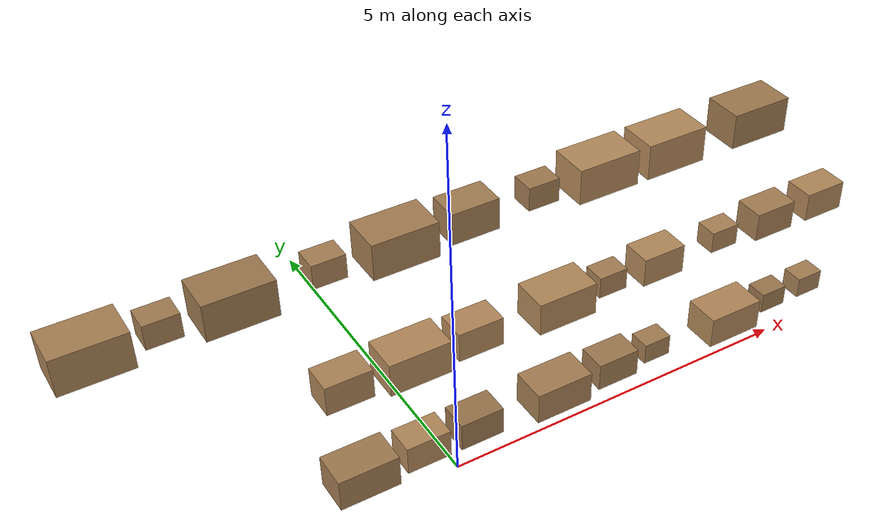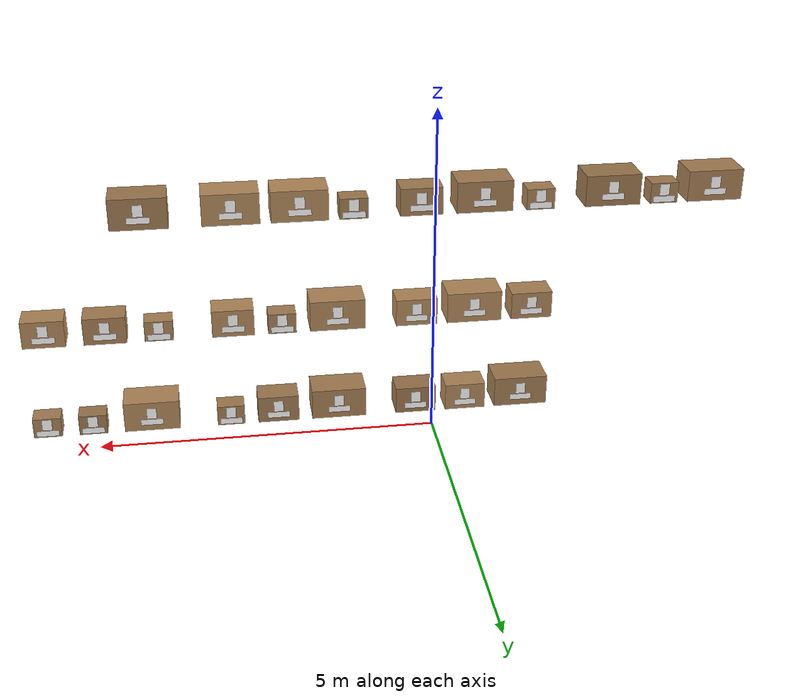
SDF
<sdf version="1.9">
 <world name="warehouse">
  <model name="inventory">
   <static>true</static>
   <link name="box_C_03_3_0">
    <visual name="body">
     <pose>-4 0.03 3.775 0 0 0</pose>
     <geometry><box><size>0.8 0.5 0.45</size></box></geometry>
     <material>
      <ambient>0.327893 0.250742 0.163947 1</ambient>
      <diffuse>0.655787 0.501484 0.327893 1</diffuse>
      <specular>0.05 0.05 0.05 1</specular>
      <pbr><metal><metalness>0.0</metalness><roughness>0.9</roughness></metal></pbr>
     </material>
    </visual>
    <collision name="body_c">
     <pose>-4 0.03 3.775 0 0 0</pose>
     <geometry><box><size>0.8 0.5 0.45</size></box></geometry>
    </collision>
    <visual name="label">
     <pose>-4 0.284 3.825 1.5708 0 3.14159</pose>
     <geometry>
      <mesh><uri>model://warehouse_assets/meshes/label_quad.obj</uri><scale>0.14 0.17 1</scale></mesh>
     </geometry>
     <material>
      <ambient>1 1 1 1</ambient>
      <diffuse>1 1 1 1</diffuse>
      <specular>0 0 0 1</specular>
      <pbr>
       <metal>
        <albedo_map>model://warehouse_assets/materials/textures/box_C0330.png</albedo_map>
        <metalness>0.0</metalness>
        <roughness>1.0</roughness>
       </metal>
      </pbr>
     </material>
    </visual>
    <visual name="placard">
     <pose>-4 0.284 3.685 1.5708 0 3.14159</pose>
     <geometry>
      <mesh><uri>model://warehouse_assets/meshes/label_quad.obj</uri><scale>0.32 0.09 1</scale></mesh>
     </geometry>
     <material>
      <ambient>1 1 1 1</ambient>
      <diffuse>1 1 1 1</diffuse>
      <specular>0 0 0 1</specular>
      <pbr>
       <metal>
        <albedo_map>model://warehouse_assets/materials/textures/placard_C0330.png</albedo_map>
        <metalness>0.0</metalness>
        <roughness>1.0</roughness>
       </metal>
      </pbr>
     </material>
    </visual>
   </link>
   <link name="box_C_03_3_1">
    <visual name="body">
     <pose>-3.25 0.13 3.7 0 0 0</pose>
     <geometry><box><size>0.4 0.3 0.3</size></box></geometry>
     <material>
      <ambient>0.320514 0.245099 0.160257 1</ambient>
      <diffuse>0.641028 0.490198 0.320514 1</diffuse>
      <specular>0.05 0.05 0.05 1</specular>
      <pbr><metal><metalness>0.0</metalness><roughness>0.9</roughness></metal></pbr>
     </material>
    </visual>
    <collision name="body_c">
     <pose>-3.25 0.13 3.7 0 0 0</pose>
     <geometry><box><size>0.4 0.3 0.3</size></box></geometry>
    </collision>
    <visual name="label">
     <pose>-3.25 0.284 3.75 1.5708 0 3.14159</pose>
     <geometry>
      <mesh><uri>model://warehouse_assets/meshes/label_quad.obj</uri><scale>0.14 0.17 1</scale></mesh>
     </geometry>
     <material>
      <ambient>1 1 1 1</ambient>
      <diffuse>1 1 1 1</diffuse>
      <specular>0 0 0 1</specular>
      <pbr>
       <metal>
        <albedo_map>model://warehouse_assets/materials/textures/box_C0331.png</albedo_map>
        <metalness>0.0</metalness>
        <roughness>1.0</roughness>
       </metal>
      </pbr>
     </material>
    </visual>
    <visual name="placard">
     <pose>-3.25 0.284 3.61 1.5708 0 3.14159</pose>
     <geometry>
      <mesh><uri>model://warehouse_assets/meshes/label_quad.obj</uri><scale>0.32 0.09 1</scale></mesh>
     </geometry>
     <material>
      <ambient>1 1 1 1</ambient>
      <diffuse>1 1 1 1</diffuse>
      <specular>0 0 0 1</specular>
      <pbr>
       <metal>
        <albedo_map>model://warehouse_assets/materials/textures/placard_C0331.png</albedo_map>
        <metalness>0.0</metalness>
        <roughness>1.0</roughness>
       </metal>
      </pbr>
     </material>
    </visual>
   </link>
   <link name="box_C_03_3_2">
    <visual name="body">
     <pose>-2.5 0.03 3.775 0 0 0</pose>
     <geometry><box><size>0.8 0.5 0.45</size></box></geometry>
     <material>
      <ambient>0.306955 0.234731 0.153478 1</ambient>
      <diffuse>0.613911 0.469461 0.306955 1</diffuse>
      <specular>0.05 0.05 0.05 1</specular>
      <pbr><metal><metalness>0.0</metalness><roughness>0.9</roughness></metal></pbr>
     </material>
    </visual>
    <collision name="body_c">
     <pose>-2.5 0.03 3.775 0 0 0</pose>
     <geometry><box><size>0.8 0.5 0.45</size></box></geometry>
    </collision>
    <visual name="label">
     <pose>-2.5 0.284 3.825 1.5708 0 3.14159</pose>
     <geometry>
      <mesh><uri>model://warehouse_assets/meshes/label_quad.obj</uri><scale>0.14 0.17 1</scale></mesh>
     </geometry>
     <material>
      <ambient>1 1 1 1</ambient>
      <diffuse>1 1 1 1</diffuse>
      <specular>0 0 0 1</specular>
      <pbr>
       <metal>
        <albedo_map>model://warehouse_assets/materials/textures/box_C0332.png</albedo_map>
        <metalness>0.0</metalness>
        <roughness>1.0</roughness>
       </metal>
      </pbr>
     </material>
    </visual>
    <visual name="placard">
     <pose>-2.5 0.284 3.685 1.5708 0 3.14159</pose>
     <geometry>
      <mesh><uri>model://warehouse_assets/meshes/label_quad.obj</uri><scale>0.32 0.09 1</scale></mesh>
     </geometry>
     <material>
      <ambient>1 1 1 1</ambient>
      <diffuse>1 1 1 1</diffuse>
      <specular>0 0 0 1</specular>
      <pbr>
       <metal>
        <albedo_map>model://warehouse_assets/materials/textures/placard_C0332.png</albedo_map>
        <metalness>0.0</metalness>
        <roughness>1.0</roughness>
       </metal>
      </pbr>
     </material>
    </visual>
   </link>
   <link name="box_C_04_1_0">
    <visual name="body">
     <pose>-1.3 0.03 0.625 0 0 0</pose>
     <geometry><box><size>0.8 0.5 0.45</size></box></geometry>
     <material>
      <ambient>0.317664 0.242919 0.158832 1</ambient>
      <diffuse>0.635327 0.485839 0.317664 1</diffuse>
      <specular>0.05 0.05 0.05 1</specular>
      <pbr><metal><metalness>0.0</metalness><roughness>0.9</roughness></metal></pbr>
     </material>
    </visual>
    <collision name="body_c">
     <pose>-1.3 0.03 0.625 0 0 0</pose>
     <geometry><box><size>0.8 0.5 0.45</size></box></geometry>
    </collision>
    <visual name="label">
     <pose>-1.3 0.284 0.675 1.5708 0 3.14159</pose>
     <geometry>
      <mesh><uri>model://warehouse_assets/meshes/label_quad.obj</uri><scale>0.14 0.17 1</scale></mesh>
     </geometry>
     <material>
      <ambient>1 1 1 1</ambient>
      <diffuse>1 1 1 1</diffuse>
      <specular>0 0 0 1</specular>
      <pbr>
       <metal>
        <albedo_map>model://warehouse_assets/materials/textures/box_C0410.png</albedo_map>
        <metalness>0.0</metalness>
        <roughness>1.0</roughness>
       </metal>
      </pbr>
     </material>
    </visual>
    <visual name="placard">
     <pose>-1.3 0.284 0.535 1.5708 0 3.14159</pose>
     <geometry>
      <mesh><uri>model://warehouse_assets/meshes/label_quad.obj</uri><scale>0.32 0.09 1</scale></mesh>
     </geometry>
     <material>
      <ambient>1 1 1 1</ambient>
      <diffuse>1 1 1 1</diffuse>
      <specular>0 0 0 1</specular>
      <pbr>
       <metal>
        <albedo_map>model://warehouse_assets/materials/textures/placard_C0410.png</albedo_map>
        <metalness>0.0</metalness>
        <roughness>1.0</roughness>
       </metal>
      </pbr>
     </material>
    </visual>
   </link>
   <link name="box_C_04_1_1">
    <visual name="body">
     <pose>-0.45 0.08 0.6 0 0 0</pose>
     <geometry><box><size>0.6 0.4 0.4</size></box></geometry>
     <material>
      <ambient>0.347395 0.265655 0.173698 1</ambient>
      <diffuse>0.694791 0.531311 0.347395 1</diffuse>
      <specular>0.05 0.05 0.05 1</specular>
      <pbr><metal><metalness>0.0</metalness><roughness>0.9</roughness></metal></pbr>
     </material>
    </visual>
    <collision name="body_c">
     <pose>-0.45 0.08 0.6 0 0 0</pose>
     <geometry><box><size>0.6 0.4 0.4</size></box></geometry>
    </collision>
    <visual name="label">
     <pose>-0.45 0.284 0.65 1.5708 0 3.14159</pose>
     <geometry>
      <mesh><uri>model://warehouse_assets/meshes/label_quad.obj</uri><scale>0.14 0.17 1</scale></mesh>
     </geometry>
     <material>
      <ambient>1 1 1 1</ambient>
      <diffuse>1 1 1 1</diffuse>
      <specular>0 0 0 1</specular>
      <pbr>
       <metal>
        <albedo_map>model://warehouse_assets/materials/textures/box_C0411.png</albedo_map>
        <metalness>0.0</metalness>
        <roughness>1.0</roughness>
       </metal>
      </pbr>
     </material>
    </visual>
    <visual name="placard">
     <pose>-0.45 0.284 0.51 1.5708 0 3.14159</pose>
     <geometry>
      <mesh><uri>model://warehouse_assets/meshes/label_quad.obj</uri><scale>0.32 0.09 1</scale></mesh>
     </geometry>
     <material>
      <ambient>1 1 1 1</ambient>
      <diffuse>1 1 1 1</diffuse>
      <specular>0 0 0 1</specular>
      <pbr>
       <metal>
        <albedo_map>model://warehouse_assets/materials/textures/placard_C0411.png</albedo_map>
        <metalness>0.0</metalness>
        <roughness>1.0</roughness>
       </metal>
      </pbr>
     </material>
    </visual>
   </link>
   <link name="box_C_04_1_2">
    <visual name="body">
     <pose>0.3 0.08 0.6 0 0 0</pose>
     <geometry><box><size>0.6 0.4 0.4</size></box></geometry>
     <material>
      <ambient>0.302794 0.231548 0.151397 1</ambient>
      <diffuse>0.605588 0.463096 0.302794 1</diffuse>
      <specular>0.05 0.05 0.05 1</specular>
      <pbr><metal><metalness>0.0</metalness><roughness>0.9</roughness></metal></pbr>
     </material>
    </visual>
    <collision name="body_c">
     <pose>0.3 0.08 0.6 0 0 0</pose>
     <geometry><box><size>0.6 0.4 0.4</size></box></geometry>
    </collision>
    <visual name="label">
     <pose>0.3 0.284 0.65 1.5708 0 3.14159</pose>
     <geometry>
      <mesh><uri>model://warehouse_assets/meshes/label_quad.obj</uri><scale>0.14 0.17 1</scale></mesh>
     </geometry>
     <material>
      <ambient>1 1 1 1</ambient>
      <diffuse>1 1 1 1</diffuse>
      <specular>0 0 0 1</specular>
      <pbr>
       <metal>
        <albedo_map>model://warehouse_assets/materials/textures/box_C0412.png</albedo_map>
        <metalness>0.0</metalness>
        <roughness>1.0</roughness>
       </metal>
      </pbr>
     </material>
    </visual>
    <visual name="placard">
     <pose>0.3 0.284 0.51 1.5708 0 3.14159</pose>
     <geometry>
      <mesh><uri>model://warehouse_assets/meshes/label_quad.obj</uri><scale>0.32 0.09 1</scale></mesh>
     </geometry>
     <material>
      <ambient>1 1 1 1</ambient>
      <diffuse>1 1 1 1</diffuse>
      <specular>0 0 0 1</specular>
      <pbr>
       <metal>
        <albedo_map>model://warehouse_assets/materials/textures/placard_C0412.png</albedo_map>
        <metalness>0.0</metalness>
        <roughness>1.0</roughness>
       </metal>
      </pbr>
     </material>
    </visual>
   </link>
   <link name="box_C_04_2_0">
    <visual name="body">
     <pose>-1.4 0.08 2.05 0 0 0</pose>
     <geometry><box><size>0.6 0.4 0.4</size></box></geometry>
     <material>
      <ambient>0.339255 0.25943 0.169627 1</ambient>
      <diffuse>0.67851 0.51886 0.339255 1</diffuse>
      <specular>0.05 0.05 0.05 1</specular>
      <pbr><metal><metalness>0.0</metalness><roughness>0.9</roughness></metal></pbr>
     </material>
    </visual>
    <collision name="body_c">
     <pose>-1.4 0.08 2.05 0 0 0</pose>
     <geometry><box><size>0.6 0.4 0.4</size></box></geometry>
    </collision>
    <visual name="label">
     <pose>-1.4 0.284 2.1 1.5708 0 3.14159</pose>
     <geometry>
      <mesh><uri>model://warehouse_assets/meshes/label_quad.obj</uri><scale>0.14 0.17 1</scale></mesh>
     </geometry>
     <material>
      <ambient>1 1 1 1</ambient>
      <diffuse>1 1 1 1</diffuse>
      <specular>0 0 0 1</specular>
      <pbr>
       <metal>
        <albedo_map>model://warehouse_assets/materials/textures/box_C0420.png</albedo_map>
        <metalness>0.0</metalness>
        <roughness>1.0</roughness>
       </metal>
      </pbr>
     </material>
    </visual>
    <visual name="placard">
     <pose>-1.4 0.284 1.96 1.5708 0 3.14159</pose>
     <geometry>
      <mesh><uri>model://warehouse_assets/meshes/label_quad.obj</uri><scale>0.32 0.09 1</scale></mesh>
     </geometry>
     <material>
      <ambient>1 1 1 1</ambient>
      <diffuse>1 1 1 1</diffuse>
      <specular>0 0 0 1</specular>
      <pbr>
       <metal>
        <albedo_map>model://warehouse_assets/materials/textures/placard_C0420.png</albedo_map>
        <metalness>0.0</metalness>
        <roughness>1.0</roughness>
       </metal>
      </pbr>
     </material>
    </visual>
   </link>
   <link name="box_C_04_2_1">
    <visual name="body">
     <pose>-0.55 0.03 2.075 0 0 0</pose>
     <geometry><box><size>0.8 0.5 0.45</size></box></geometry>
     <material>
      <ambient>0.352536 0.269586 0.176268 1</ambient>
      <diffuse>0.705071 0.539172 0.352536 1</diffuse>
      <specular>0.05 0.05 0.05 1</specular>
      <pbr><metal><metalness>0.0</metalness><roughness>0.9</roughness></metal></pbr>
     </material>
    </visual>
    <collision name="body_c">
     <pose>-0.55 0.03 2.075 0 0 0</pose>
     <geometry><box><size>0.8 0.5 0.45</size></box></geometry>
    </collision>
    <visual name="label">
     <pose>-0.55 0.284 2.125 1.5708 0 3.14159</pose>
     <geometry>
      <mesh><uri>model://warehouse_assets/meshes/label_quad.obj</uri><scale>0.14 0.17 1</scale></mesh>
     </geometry>
     <material>
      <ambient>1 1 1 1</ambient>
      <diffuse>1 1 1 1</diffuse>
      <specular>0 0 0 1</specular>
      <pbr>
       <metal>
        <albedo_map>model://warehouse_assets/materials/textures/box_C0421.png</albedo_map>
        <metalness>0.0</metalness>
        <roughness>1.0</roughness>
       </metal>
      </pbr>
     </material>
    </visual>
    <visual name="placard">
     <pose>-0.55 0.284 1.985 1.5708 0 3.14159</pose>
     <geometry>
      <mesh><uri>model://warehouse_assets/meshes/label_quad.obj</uri><scale>0.32 0.09 1</scale></mesh>
     </geometry>
     <material>
      <ambient>1 1 1 1</ambient>
      <diffuse>1 1 1 1</diffuse>
      <specular>0 0 0 1</specular>
      <pbr>
       <metal>
        <albedo_map>model://warehouse_assets/materials/textures/placard_C0421.png</albedo_map>
        <metalness>0.0</metalness>
        <roughness>1.0</roughness>
       </metal>
      </pbr>
     </material>
    </visual>
   </link>
   <link name="box_C_04_2_2">
    <visual name="body">
     <pose>0.3 0.08 2.05 0 0 0</pose>
     <geometry><box><size>0.6 0.4 0.4</size></box></geometry>
     <material>
      <ambient>0.352989 0.269933 0.176494 1</ambient>
      <diffuse>0.705978 0.539866 0.352989 1</diffuse>
      <specular>0.05 0.05 0.05 1</specular>
      <pbr><metal><metalness>0.0</metalness><roughness>0.9</roughness></metal></pbr>
     </material>
    </visual>
    <collision name="body_c">
     <pose>0.3 0.08 2.05 0 0 0</pose>
     <geometry><box><size>0.6 0.4 0.4</size></box></geometry>
    </collision>
    <visual name="label">
     <pose>0.3 0.284 2.1 1.5708 0 3.14159</pose>
     <geometry>
      <mesh><uri>model://warehouse_assets/meshes/label_quad.obj</uri><scale>0.14 0.17 1</scale></mesh>
     </geometry>
     <material>
      <ambient>1 1 1 1</ambient>
      <diffuse>1 1 1 1</diffuse>
      <specular>0 0 0 1</specular>
      <pbr>
       <metal>
        <albedo_map>model://warehouse_assets/materials/textures/box_C0422.png</albedo_map>
        <metalness>0.0</metalness>
        <roughness>1.0</roughness>
       </metal>
      </pbr>
     </material>
    </visual>
    <visual name="placard">
     <pose>0.3 0.284 1.96 1.5708 0 3.14159</pose>
     <geometry>
      <mesh><uri>model://warehouse_assets/meshes/label_quad.obj</uri><scale>0.32 0.09 1</scale></mesh>
     </geometry>
     <material>
      <ambient>1 1 1 1</ambient>
      <diffuse>1 1 1 1</diffuse>
      <specular>0 0 0 1</specular>
      <pbr>
       <metal>
        <albedo_map>model://warehouse_assets/materials/textures/placard_C0422.png</albedo_map>
        <metalness>0.0</metalness>
        <roughness>1.0</roughness>
       </metal>
      </pbr>
     </material>
    </visual>
   </link>
   <link name="box_C_04_3_0">
    <visual name="body">
     <pose>-1.45 0.13 3.7 0 0 0</pose>
     <geometry><box><size>0.4 0.3 0.3</size></box></geometry>
     <material>
      <ambient>0.329531 0.251994 0.164765 1</ambient>
      <diffuse>0.659061 0.503988 0.329531 1</diffuse>
      <specular>0.05 0.05 0.05 1</specular>
      <pbr><metal><metalness>0.0</metalness><roughness>0.9</roughness></metal></pbr>
     </material>
    </visual>
    <collision name="body_c">
     <pose>-1.45 0.13 3.7 0 0 0</pose>
     <geometry><box><size>0.4 0.3 0.3</size></box></geometry>
    </collision>
    <visual name="label">
     <pose>-1.45 0.284 3.75 1.5708 0 3.14159</pose>
     <geometry>
      <mesh><uri>model://warehouse_assets/meshes/label_quad.obj</uri><scale>0.14 0.17 1</scale></mesh>
     </geometry>
     <material>
      <ambient>1 1 1 1</ambient>
      <diffuse>1 1 1 1</diffuse>
      <specular>0 0 0 1</specular>
      <pbr>
       <metal>
        <albedo_map>model://warehouse_assets/materials/textures/box_C0430.png</albedo_map>
        <metalness>0.0</metalness>
        <roughness>1.0</roughness>
       </metal>
      </pbr>
     </material>
    </visual>
    <visual name="placard">
     <pose>-1.45 0.284 3.61 1.5708 0 3.14159</pose>
     <geometry>
      <mesh><uri>model://warehouse_assets/meshes/label_quad.obj</uri><scale>0.32 0.09 1</scale></mesh>
     </geometry>
     <material>
      <ambient>1 1 1 1</ambient>
      <diffuse>1 1 1 1</diffuse>
      <specular>0 0 0 1</specular>
      <pbr>
       <metal>
        <albedo_map>model://warehouse_assets/materials/textures/placard_C0430.png</albedo_map>
        <metalness>0.0</metalness>
        <roughness>1.0</roughness>
       </metal>
      </pbr>
     </material>
    </visual>
   </link>
   <link name="box_C_04_3_1">
    <visual name="body">
     <pose>-0.65 0.03 3.775 0 0 0</pose>
     <geometry><box><size>0.8 0.5 0.45</size></box></geometry>
     <material>
      <ambient>0.323073 0.247056 0.161537 1</ambient>
      <diffuse>0.646146 0.494112 0.323073 1</diffuse>
      <specular>0.05 0.05 0.05 1</specular>
      <pbr><metal><metalness>0.0</metalness><roughness>0.9</roughness></metal></pbr>
     </material>
    </visual>
    <collision name="body_c">
     <pose>-0.65 0.03 3.775 0 0 0</pose>
     <geometry><box><size>0.8 0.5 0.45</size></box></geometry>
    </collision>
    <visual name="label">
     <pose>-0.65 0.284 3.825 1.5708 0 3.14159</pose>
     <geometry>
      <mesh><uri>model://warehouse_assets/meshes/label_quad.obj</uri><scale>0.14 0.17 1</scale></mesh>
     </geometry>
     <material>
      <ambient>1 1 1 1</ambient>
      <diffuse>1 1 1 1</diffuse>
      <specular>0 0 0 1</specular>
      <pbr>
       <metal>
        <albedo_map>model://warehouse_assets/materials/textures/box_C0431.png</albedo_map>
        <metalness>0.0</metalness>
        <roughness>1.0</roughness>
       </metal>
      </pbr>
     </material>
    </visual>
    <visual name="placard">
     <pose>-0.65 0.284 3.685 1.5708 0 3.14159</pose>
     <geometry>
      <mesh><uri>model://warehouse_assets/meshes/label_quad.obj</uri><scale>0.32 0.09 1</scale></mesh>
     </geometry>
     <material>
      <ambient>1 1 1 1</ambient>
      <diffuse>1 1 1 1</diffuse>
      <specular>0 0 0 1</specular>
      <pbr>
       <metal>
        <albedo_map>model://warehouse_assets/materials/textures/placard_C0431.png</albedo_map>
        <metalness>0.0</metalness>
        <roughness>1.0</roughness>
       </metal>
      </pbr>
     </material>
    </visual>
   </link>
   <link name="box_C_04_3_2">
    <visual name="body">
     <pose>0.25 0.08 3.75 0 0 0</pose>
     <geometry><box><size>0.6 0.4 0.4</size></box></geometry>
     <material>
      <ambient>0.321992 0.246229 0.160996 1</ambient>
      <diffuse>0.643983 0.492458 0.321992 1</diffuse>
      <specular>0.05 0.05 0.05 1</specular>
      <pbr><metal><metalness>0.0</metalness><roughness>0.9</roughness></metal></pbr>
     </material>
    </visual>
    <collision name="body_c">
     <pose>0.25 0.08 3.75 0 0 0</pose>
     <geometry><box><size>0.6 0.4 0.4</size></box></geometry>
    </collision>
    <visual name="label">
     <pose>0.25 0.284 3.8 1.5708 0 3.14159</pose>
     <geometry>
      <mesh><uri>model://warehouse_assets/meshes/label_quad.obj</uri><scale>0.14 0.17 1</scale></mesh>
     </geometry>
     <material>
      <ambient>1 1 1 1</ambient>
      <diffuse>1 1 1 1</diffuse>
      <specular>0 0 0 1</specular>
      <pbr>
       <metal>
        <albedo_map>model://warehouse_assets/materials/textures/box_C0432.png</albedo_map>
        <metalness>0.0</metalness>
        <roughness>1.0</roughness>
       </metal>
      </pbr>
     </material>
    </visual>
    <visual name="placard">
     <pose>0.25 0.284 3.66 1.5708 0 3.14159</pose>
     <geometry>
      <mesh><uri>model://warehouse_assets/meshes/label_quad.obj</uri><scale>0.32 0.09 1</scale></mesh>
     </geometry>
     <material>
      <ambient>1 1 1 1</ambient>
      <diffuse>1 1 1 1</diffuse>
      <specular>0 0 0 1</specular>
      <pbr>
       <metal>
        <albedo_map>model://warehouse_assets/materials/textures/placard_C0432.png</albedo_map>
        <metalness>0.0</metalness>
        <roughness>1.0</roughness>
       </metal>
      </pbr>
     </material>
    </visual>
   </link>
   <link name="box_C_05_1_0">
    <visual name="body">
     <pose>1.45 0.03 0.625 0 0 0</pose>
     <geometry><box><size>0.8 0.5 0.45</size></box></geometry>
     <material>
      <ambient>0.326276 0.249505 0.163138 1</ambient>
      <diffuse>0.652552 0.49901 0.326276 1</diffuse>
      <specular>0.05 0.05 0.05 1</specular>
      <pbr><metal><metalness>0.0</metalness><roughness>0.9</roughness></metal></pbr>
     </material>
    </visual>
    <collision name="body_c">
     <pose>1.45 0.03 0.625 0 0 0</pose>
     <geometry><box><size>0.8 0.5 0.45</size></box></geometry>
    </collision>
    <visual name="label">
     <pose>1.45 0.284 0.675 1.5708 0 3.14159</pose>
     <geometry>
      <mesh><uri>model://warehouse_assets/meshes/label_quad.obj</uri><scale>0.14 0.17 1</scale></mesh>
     </geometry>
     <material>
      <ambient>1 1 1 1</ambient>
      <diffuse>1 1 1 1</diffuse>
      <specular>0 0 0 1</specular>
      <pbr>
       <metal>
        <albedo_map>model://warehouse_assets/materials/textures/box_C0510.png</albedo_map>
        <metalness>0.0</metalness>
        <roughness>1.0</roughness>
       </metal>
      </pbr>
     </material>
    </visual>
    <visual name="placard">
     <pose>1.45 0.284 0.535 1.5708 0 3.14159</pose>
     <geometry>
      <mesh><uri>model://warehouse_assets/meshes/label_quad.obj</uri><scale>0.32 0.09 1</scale></mesh>
     </geometry>
     <material>
      <ambient>1 1 1 1</ambient>
      <diffuse>1 1 1 1</diffuse>
      <specular>0 0 0 1</specular>
      <pbr>
       <metal>
        <albedo_map>model://warehouse_assets/materials/textures/placard_C0510.png</albedo_map>
        <metalness>0.0</metalness>
        <roughness>1.0</roughness>
       </metal>
      </pbr>
     </material>
    </visual>
   </link>
   <link name="box_C_05_1_1">
    <visual name="body">
     <pose>2.35 0.08 0.6 0 0 0</pose>
     <geometry><box><size>0.6 0.4 0.4</size></box></geometry>
     <material>
      <ambient>0.315441 0.241219 0.15772 1</ambient>
      <diffuse>0.630881 0.482439 0.315441 1</diffuse>
      <specular>0.05 0.05 0.05 1</specular>
      <pbr><metal><metalness>0.0</metalness><roughness>0.9</roughness></metal></pbr>
     </material>
    </visual>
    <collision name="body_c">
     <pose>2.35 0.08 0.6 0 0 0</pose>
     <geometry><box><size>0.6 0.4 0.4</size></box></geometry>
    </collision>
    <visual name="label">
     <pose>2.35 0.284 0.65 1.5708 0 3.14159</pose>
     <geometry>
      <mesh><uri>model://warehouse_assets/meshes/label_quad.obj</uri><scale>0.14 0.17 1</scale></mesh>
     </geometry>
     <material>
      <ambient>1 1 1 1</ambient>
      <diffuse>1 1 1 1</diffuse>
      <specular>0 0 0 1</specular>
      <pbr>
       <metal>
        <albedo_map>model://warehouse_assets/materials/textures/box_C0511.png</albedo_map>
        <metalness>0.0</metalness>
        <roughness>1.0</roughness>
       </metal>
      </pbr>
     </material>
    </visual>
    <visual name="placard">
     <pose>2.35 0.284 0.51 1.5708 0 3.14159</pose>
     <geometry>
      <mesh><uri>model://warehouse_assets/meshes/label_quad.obj</uri><scale>0.32 0.09 1</scale></mesh>
     </geometry>
     <material>
      <ambient>1 1 1 1</ambient>
      <diffuse>1 1 1 1</diffuse>
      <specular>0 0 0 1</specular>
      <pbr>
       <metal>
        <albedo_map>model://warehouse_assets/materials/textures/placard_C0511.png</albedo_map>
        <metalness>0.0</metalness>
        <roughness>1.0</roughness>
       </metal>
      </pbr>
     </material>
    </visual>
   </link>
   <link name="box_C_05_1_2">
    <visual name="body">
     <pose>3.05 0.13 0.55 0 0 0</pose>
     <geometry><box><size>0.4 0.3 0.3</size></box></geometry>
     <material>
      <ambient>0.321903 0.246161 0.160951 1</ambient>
      <diffuse>0.643806 0.492322 0.321903 1</diffuse>
      <specular>0.05 0.05 0.05 1</specular>
      <pbr><metal><metalness>0.0</metalness><roughness>0.9</roughness></metal></pbr>
     </material>
    </visual>
    <collision name="body_c">
     <pose>3.05 0.13 0.55 0 0 0</pose>
     <geometry><box><size>0.4 0.3 0.3</size></box></geometry>
    </collision>
    <visual name="label">
     <pose>3.05 0.284 0.6 1.5708 0 3.14159</pose>
     <geometry>
      <mesh><uri>model://warehouse_assets/meshes/label_quad.obj</uri><scale>0.14 0.17 1</scale></mesh>
     </geometry>
     <material>
      <ambient>1 1 1 1</ambient>
      <diffuse>1 1 1 1</diffuse>
      <specular>0 0 0 1</specular>
      <pbr>
       <metal>
        <albedo_map>model://warehouse_assets/materials/textures/box_C0512.png</albedo_map>
        <metalness>0.0</metalness>
        <roughness>1.0</roughness>
       </metal>
      </pbr>
     </material>
    </visual>
    <visual name="placard">
     <pose>3.05 0.284 0.46 1.5708 0 3.14159</pose>
     <geometry>
      <mesh><uri>model://warehouse_assets/meshes/label_quad.obj</uri><scale>0.32 0.09 1</scale></mesh>
     </geometry>
     <material>
      <ambient>1 1 1 1</ambient>
      <diffuse>1 1 1 1</diffuse>
      <specular>0 0 0 1</specular>
      <pbr>
       <metal>
        <albedo_map>model://warehouse_assets/materials/textures/placard_C0512.png</albedo_map>
        <metalness>0.0</metalness>
        <roughness>1.0</roughness>
       </metal>
      </pbr>
     </material>
    </visual>
   </link>
   <link name="box_C_05_2_0">
    <visual name="body">
     <pose>1.45 0.03 2.075 0 0 0</pose>
     <geometry><box><size>0.8 0.5 0.45</size></box></geometry>
     <material>
      <ambient>0.347163 0.265478 0.173582 1</ambient>
      <diffuse>0.694326 0.530955 0.347163 1</diffuse>
      <specular>0.05 0.05 0.05 1</specular>
      <pbr><metal><metalness>0.0</metalness><roughness>0.9</roughness></metal></pbr>
     </material>
    </visual>
    <collision name="body_c">
     <pose>1.45 0.03 2.075 0 0 0</pose>
     <geometry><box><size>0.8 0.5 0.45</size></box></geometry>
    </collision>
    <visual name="label">
     <pose>1.45 0.284 2.125 1.5708 0 3.14159</pose>
     <geometry>
      <mesh><uri>model://warehouse_assets/meshes/label_quad.obj</uri><scale>0.14 0.17 1</scale></mesh>
     </geometry>
     <material>
      <ambient>1 1 1 1</ambient>
      <diffuse>1 1 1 1</diffuse>
      <specular>0 0 0 1</specular>
      <pbr>
       <metal>
        <albedo_map>model://warehouse_assets/materials/textures/box_C0520.png</albedo_map>
        <metalness>0.0</metalness>
        <roughness>1.0</roughness>
       </metal>
      </pbr>
     </material>
    </visual>
    <visual name="placard">
     <pose>1.45 0.284 1.985 1.5708 0 3.14159</pose>
     <geometry>
      <mesh><uri>model://warehouse_assets/meshes/label_quad.obj</uri><scale>0.32 0.09 1</scale></mesh>
     </geometry>
     <material>
      <ambient>1 1 1 1</ambient>
      <diffuse>1 1 1 1</diffuse>
      <specular>0 0 0 1</specular>
      <pbr>
       <metal>
        <albedo_map>model://warehouse_assets/materials/textures/placard_C0520.png</albedo_map>
        <metalness>0.0</metalness>
        <roughness>1.0</roughness>
       </metal>
      </pbr>
     </material>
    </visual>
   </link>
   <link name="box_C_05_2_1">
    <visual name="body">
     <pose>2.25 0.13 2 0 0 0</pose>
     <geometry><box><size>0.4 0.3 0.3</size></box></geometry>
     <material>
      <ambient>0.327279 0.250272 0.16364 1</ambient>
      <diffuse>0.654558 0.500545 0.327279 1</diffuse>
      <specular>0.05 0.05 0.05 1</specular>
      <pbr><metal><metalness>0.0</metalness><roughness>0.9</roughness></metal></pbr>
     </material>
    </visual>
    <collision name="body_c">
     <pose>2.25 0.13 2 0 0 0</pose>
     <geometry><box><size>0.4 0.3 0.3</size></box></geometry>
    </collision>
    <visual name="label">
     <pose>2.25 0.284 2.05 1.5708 0 3.14159</pose>
     <geometry>
      <mesh><uri>model://warehouse_assets/meshes/label_quad.obj</uri><scale>0.14 0.17 1</scale></mesh>
     </geometry>
     <material>
      <ambient>1 1 1 1</ambient>
      <diffuse>1 1 1 1</diffuse>
      <specular>0 0 0 1</specular>
      <pbr>
       <metal>
        <albedo_map>model://warehouse_assets/materials/textures/box_C0521.png</albedo_map>
        <metalness>0.0</metalness>
        <roughness>1.0</roughness>
       </metal>
      </pbr>
     </material>
    </visual>
    <visual name="placard">
     <pose>2.25 0.284 1.91 1.5708 0 3.14159</pose>
     <geometry>
      <mesh><uri>model://warehouse_assets/meshes/label_quad.obj</uri><scale>0.32 0.09 1</scale></mesh>
     </geometry>
     <material>
      <ambient>1 1 1 1</ambient>
      <diffuse>1 1 1 1</diffuse>
      <specular>0 0 0 1</specular>
      <pbr>
       <metal>
        <albedo_map>model://warehouse_assets/materials/textures/placard_C0521.png</albedo_map>
        <metalness>0.0</metalness>
        <roughness>1.0</roughness>
       </metal>
      </pbr>
     </material>
    </visual>
   </link>
   <link name="box_C_05_2_2">
    <visual name="body">
     <pose>2.95 0.08 2.05 0 0 0</pose>
     <geometry><box><size>0.6 0.4 0.4</size></box></geometry>
     <material>
      <ambient>0.351637 0.268899 0.175819 1</ambient>
      <diffuse>0.703275 0.537798 0.351637 1</diffuse>
      <specular>0.05 0.05 0.05 1</specular>
      <pbr><metal><metalness>0.0</metalness><roughness>0.9</roughness></metal></pbr>
     </material>
    </visual>
    <collision name="body_c">
     <pose>2.95 0.08 2.05 0 0 0</pose>
     <geometry><box><size>0.6 0.4 0.4</size></box></geometry>
    </collision>
    <visual name="label">
     <pose>2.95 0.284 2.1 1.5708 0 3.14159</pose>
     <geometry>
      <mesh><uri>model://warehouse_assets/meshes/label_quad.obj</uri><scale>0.14 0.17 1</scale></mesh>
     </geometry>
     <material>
      <ambient>1 1 1 1</ambient>
      <diffuse>1 1 1 1</diffuse>
      <specular>0 0 0 1</specular>
      <pbr>
       <metal>
        <albedo_map>model://warehouse_assets/materials/textures/box_C0522.png</albedo_map>
        <metalness>0.0</metalness>
        <roughness>1.0</roughness>
       </metal>
      </pbr>
     </material>
    </visual>
    <visual name="placard">
     <pose>2.95 0.284 1.96 1.5708 0 3.14159</pose>
     <geometry>
      <mesh><uri>model://warehouse_assets/meshes/label_quad.obj</uri><scale>0.32 0.09 1</scale></mesh>
     </geometry>
     <material>
      <ambient>1 1 1 1</ambient>
      <diffuse>1 1 1 1</diffuse>
      <specular>0 0 0 1</specular>
      <pbr>
       <metal>
        <albedo_map>model://warehouse_assets/materials/textures/placard_C0522.png</albedo_map>
        <metalness>0.0</metalness>
        <roughness>1.0</roughness>
       </metal>
      </pbr>
     </material>
    </visual>
   </link>
   <link name="box_C_05_3_0">
    <visual name="body">
     <pose>1.2 0.13 3.7 0 0 0</pose>
     <geometry><box><size>0.4 0.3 0.3</size></box></geometry>
     <material>
      <ambient>0.317836 0.243051 0.158918 1</ambient>
      <diffuse>0.635673 0.486103 0.317836 1</diffuse>
      <specular>0.05 0.05 0.05 1</specular>
      <pbr><metal><metalness>0.0</metalness><roughness>0.9</roughness></metal></pbr>
     </material>
    </visual>
    <collision name="body_c">
     <pose>1.2 0.13 3.7 0 0 0</pose>
     <geometry><box><size>0.4 0.3 0.3</size></box></geometry>
    </collision>
    <visual name="label">
     <pose>1.2 0.284 3.75 1.5708 0 3.14159</pose>
     <geometry>
      <mesh><uri>model://warehouse_assets/meshes/label_quad.obj</uri><scale>0.14 0.17 1</scale></mesh>
     </geometry>
     <material>
      <ambient>1 1 1 1</ambient>
      <diffuse>1 1 1 1</diffuse>
      <specular>0 0 0 1</specular>
      <pbr>
       <metal>
        <albedo_map>model://warehouse_assets/materials/textures/box_C0530.png</albedo_map>
        <metalness>0.0</metalness>
        <roughness>1.0</roughness>
       </metal>
      </pbr>
     </material>
    </visual>
    <visual name="placard">
     <pose>1.2 0.284 3.61 1.5708 0 3.14159</pose>
     <geometry>
      <mesh><uri>model://warehouse_assets/meshes/label_quad.obj</uri><scale>0.32 0.09 1</scale></mesh>
     </geometry>
     <material>
      <ambient>1 1 1 1</ambient>
      <diffuse>1 1 1 1</diffuse>
      <specular>0 0 0 1</specular>
      <pbr>
       <metal>
        <albedo_map>model://warehouse_assets/materials/textures/placard_C0530.png</albedo_map>
        <metalness>0.0</metalness>
        <roughness>1.0</roughness>
       </metal>
      </pbr>
     </material>
    </visual>
   </link>
   <link name="box_C_05_3_1">
    <visual name="body">
     <pose>1.95 0.03 3.775 0 0 0</pose>
     <geometry><box><size>0.8 0.5 0.45</size></box></geometry>
     <material>
      <ambient>0.353658 0.270444 0.176829 1</ambient>
      <diffuse>0.707316 0.540889 0.353658 1</diffuse>
      <specular>0.05 0.05 0.05 1</specular>
      <pbr><metal><metalness>0.0</metalness><roughness>0.9</roughness></metal></pbr>
     </material>
    </visual>
    <collision name="body_c">
     <pose>1.95 0.03 3.775 0 0 0</pose>
     <geometry><box><size>0.8 0.5 0.45</size></box></geometry>
    </collision>
    <visual name="label">
     <pose>1.95 0.284 3.825 1.5708 0 3.14159</pose>
     <geometry>
      <mesh><uri>model://warehouse_assets/meshes/label_quad.obj</uri><scale>0.14 0.17 1</scale></mesh>
     </geometry>
     <material>
      <ambient>1 1 1 1</ambient>
      <diffuse>1 1 1 1</diffuse>
      <specular>0 0 0 1</specular>
      <pbr>
       <metal>
        <albedo_map>model://warehouse_assets/materials/textures/box_C0531.png</albedo_map>
        <metalness>0.0</metalness>
        <roughness>1.0</roughness>
       </metal>
      </pbr>
     </material>
    </visual>
    <visual name="placard">
     <pose>1.95 0.284 3.685 1.5708 0 3.14159</pose>
     <geometry>
      <mesh><uri>model://warehouse_assets/meshes/label_quad.obj</uri><scale>0.32 0.09 1</scale></mesh>
     </geometry>
     <material>
      <ambient>1 1 1 1</ambient>
      <diffuse>1 1 1 1</diffuse>
      <specular>0 0 0 1</specular>
      <pbr>
       <metal>
        <albedo_map>model://warehouse_assets/materials/textures/placard_C0531.png</albedo_map>
        <metalness>0.0</metalness>
        <roughness>1.0</roughness>
       </metal>
      </pbr>
     </material>
    </visual>
   </link>
   <link name="box_C_05_3_2">
    <visual name="body">
     <pose>2.9 0.03 3.775 0 0 0</pose>
     <geometry><box><size>0.8 0.5 0.45</size></box></geometry>
     <material>
      <ambient>0.354182 0.270845 0.177091 1</ambient>
      <diffuse>0.708363 0.54169 0.354182 1</diffuse>
      <specular>0.05 0.05 0.05 1</specular>
      <pbr><metal><metalness>0.0</metalness><roughness>0.9</roughness></metal></pbr>
     </material>
    </visual>
    <collision name="body_c">
     <pose>2.9 0.03 3.775 0 0 0</pose>
     <geometry><box><size>0.8 0.5 0.45</size></box></geometry>
    </collision>
    <visual name="label">
     <pose>2.9 0.284 3.825 1.5708 0 3.14159</pose>
     <geometry>
      <mesh><uri>model://warehouse_assets/meshes/label_quad.obj</uri><scale>0.14 0.17 1</scale></mesh>
     </geometry>
     <material>
      <ambient>1 1 1 1</ambient>
      <diffuse>1 1 1 1</diffuse>
      <specular>0 0 0 1</specular>
      <pbr>
       <metal>
        <albedo_map>model://warehouse_assets/materials/textures/box_C0532.png</albedo_map>
        <metalness>0.0</metalness>
        <roughness>1.0</roughness>
       </metal>
      </pbr>
     </material>
    </visual>
    <visual name="placard">
     <pose>2.9 0.284 3.685 1.5708 0 3.14159</pose>
     <geometry>
      <mesh><uri>model://warehouse_assets/meshes/label_quad.obj</uri><scale>0.32 0.09 1</scale></mesh>
     </geometry>
     <material>
      <ambient>1 1 1 1</ambient>
      <diffuse>1 1 1 1</diffuse>
      <specular>0 0 0 1</specular>
      <pbr>
       <metal>
        <albedo_map>model://warehouse_assets/materials/textures/placard_C0532.png</albedo_map>
        <metalness>0.0</metalness>
        <roughness>1.0</roughness>
       </metal>
      </pbr>
     </material>
    </visual>
   </link>
   <link name="box_C_06_1_0">
    <visual name="body">
     <pose>4.2 0.03 0.625 0 0 0</pose>
     <geometry><box><size>0.8 0.5 0.45</size></box></geometry>
     <material>
      <ambient>0.349576 0.267323 0.174788 1</ambient>
      <diffuse>0.699153 0.534646 0.349576 1</diffuse>
      <specular>0.05 0.05 0.05 1</specular>
      <pbr><metal><metalness>0.0</metalness><roughness>0.9</roughness></metal></pbr>
     </material>
    </visual>
    <collision name="body_c">
     <pose>4.2 0.03 0.625 0 0 0</pose>
     <geometry><box><size>0.8 0.5 0.45</size></box></geometry>
    </collision>
    <visual name="label">
     <pose>4.2 0.284 0.675 1.5708 0 3.14159</pose>
     <geometry>
      <mesh><uri>model://warehouse_assets/meshes/label_quad.obj</uri><scale>0.14 0.17 1</scale></mesh>
     </geometry>
     <material>
      <ambient>1 1 1 1</ambient>
      <diffuse>1 1 1 1</diffuse>
      <specular>0 0 0 1</specular>
      <pbr>
       <metal>
        <albedo_map>model://warehouse_assets/materials/textures/box_C0610.png</albedo_map>
        <metalness>0.0</metalness>
        <roughness>1.0</roughness>
       </metal>
      </pbr>
     </material>
    </visual>
    <visual name="placard">
     <pose>4.2 0.284 0.535 1.5708 0 3.14159</pose>
     <geometry>
      <mesh><uri>model://warehouse_assets/meshes/label_quad.obj</uri><scale>0.32 0.09 1</scale></mesh>
     </geometry>
     <material>
      <ambient>1 1 1 1</ambient>
      <diffuse>1 1 1 1</diffuse>
      <specular>0 0 0 1</specular>
      <pbr>
       <metal>
        <albedo_map>model://warehouse_assets/materials/textures/placard_C0610.png</albedo_map>
        <metalness>0.0</metalness>
        <roughness>1.0</roughness>
       </metal>
      </pbr>
     </material>
    </visual>
   </link>
   <link name="box_C_06_1_1">
    <visual name="body">
     <pose>5.05 0.13 0.55 0 0 0</pose>
     <geometry><box><size>0.4 0.3 0.3</size></box></geometry>
     <material>
      <ambient>0.306314 0.23424 0.153157 1</ambient>
      <diffuse>0.612627 0.46848 0.306314 1</diffuse>
      <specular>0.05 0.05 0.05 1</specular>
      <pbr><metal><metalness>0.0</metalness><roughness>0.9</roughness></metal></pbr>
     </material>
    </visual>
    <collision name="body_c">
     <pose>5.05 0.13 0.55 0 0 0</pose>
     <geometry><box><size>0.4 0.3 0.3</size></box></geometry>
    </collision>
    <visual name="label">
     <pose>5.05 0.284 0.6 1.5708 0 3.14159</pose>
     <geometry>
      <mesh><uri>model://warehouse_assets/meshes/label_quad.obj</uri><scale>0.14 0.17 1</scale></mesh>
     </geometry>
     <material>
      <ambient>1 1 1 1</ambient>
      <diffuse>1 1 1 1</diffuse>
      <specular>0 0 0 1</specular>
      <pbr>
       <metal>
        <albedo_map>model://warehouse_assets/materials/textures/box_C0611.png</albedo_map>
        <metalness>0.0</metalness>
        <roughness>1.0</roughness>
       </metal>
      </pbr>
     </material>
    </visual>
    <visual name="placard">
     <pose>5.05 0.284 0.46 1.5708 0 3.14159</pose>
     <geometry>
      <mesh><uri>model://warehouse_assets/meshes/label_quad.obj</uri><scale>0.32 0.09 1</scale></mesh>
     </geometry>
     <material>
      <ambient>1 1 1 1</ambient>
      <diffuse>1 1 1 1</diffuse>
      <specular>0 0 0 1</specular>
      <pbr>
       <metal>
        <albedo_map>model://warehouse_assets/materials/textures/placard_C0611.png</albedo_map>
        <metalness>0.0</metalness>
        <roughness>1.0</roughness>
       </metal>
      </pbr>
     </material>
    </visual>
   </link>
   <link name="box_C_06_1_2">
    <visual name="body">
     <pose>5.7 0.13 0.55 0 0 0</pose>
     <geometry><box><size>0.4 0.3 0.3</size></box></geometry>
     <material>
      <ambient>0.328906 0.251516 0.164453 1</ambient>
      <diffuse>0.657812 0.503032 0.328906 1</diffuse>
      <specular>0.05 0.05 0.05 1</specular>
      <pbr><metal><metalness>0.0</metalness><roughness>0.9</roughness></metal></pbr>
     </material>
    </visual>
    <collision name="body_c">
     <pose>5.7 0.13 0.55 0 0 0</pose>
     <geometry><box><size>0.4 0.3 0.3</size></box></geometry>
    </collision>
    <visual name="label">
     <pose>5.7 0.284 0.6 1.5708 0 3.14159</pose>
     <geometry>
      <mesh><uri>model://warehouse_assets/meshes/label_quad.obj</uri><scale>0.14 0.17 1</scale></mesh>
     </geometry>
     <material>
      <ambient>1 1 1 1</ambient>
      <diffuse>1 1 1 1</diffuse>
      <specular>0 0 0 1</specular>
      <pbr>
       <metal>
        <albedo_map>model://warehouse_assets/materials/textures/box_C0612.png</albedo_map>
        <metalness>0.0</metalness>
        <roughness>1.0</roughness>
       </metal>
      </pbr>
     </material>
    </visual>
    <visual name="placard">
     <pose>5.7 0.284 0.46 1.5708 0 3.14159</pose>
     <geometry>
      <mesh><uri>model://warehouse_assets/meshes/label_quad.obj</uri><scale>0.32 0.09 1</scale></mesh>
     </geometry>
     <material>
      <ambient>1 1 1 1</ambient>
      <diffuse>1 1 1 1</diffuse>
      <specular>0 0 0 1</specular>
      <pbr>
       <metal>
        <albedo_map>model://warehouse_assets/materials/textures/placard_C0612.png</albedo_map>
        <metalness>0.0</metalness>
        <roughness>1.0</roughness>
       </metal>
      </pbr>
     </material>
    </visual>
   </link>
   <link name="box_C_06_2_0">
    <visual name="body">
     <pose>4 0.13 2 0 0 0</pose>
     <geometry><box><size>0.4 0.3 0.3</size></box></geometry>
     <material>
      <ambient>0.33708 0.257767 0.16854 1</ambient>
      <diffuse>0.674159 0.515534 0.33708 1</diffuse>
      <specular>0.05 0.05 0.05 1</specular>
      <pbr><metal><metalness>0.0</metalness><roughness>0.9</roughness></metal></pbr>
     </material>
    </visual>
    <collision name="body_c">
     <pose>4 0.13 2 0 0 0</pose>
     <geometry><box><size>0.4 0.3 0.3</size></box></geometry>
    </collision>
    <visual name="label">
     <pose>4 0.284 2.05 1.5708 0 3.14159</pose>
     <geometry>
      <mesh><uri>model://warehouse_assets/meshes/label_quad.obj</uri><scale>0.14 0.17 1</scale></mesh>
     </geometry>
     <material>
      <ambient>1 1 1 1</ambient>
      <diffuse>1 1 1 1</diffuse>
      <specular>0 0 0 1</specular>
      <pbr>
       <metal>
        <albedo_map>model://warehouse_assets/materials/textures/box_C0620.png</albedo_map>
        <metalness>0.0</metalness>
        <roughness>1.0</roughness>
       </metal>
      </pbr>
     </material>
    </visual>
    <visual name="placard">
     <pose>4 0.284 1.91 1.5708 0 3.14159</pose>
     <geometry>
      <mesh><uri>model://warehouse_assets/meshes/label_quad.obj</uri><scale>0.32 0.09 1</scale></mesh>
     </geometry>
     <material>
      <ambient>1 1 1 1</ambient>
      <diffuse>1 1 1 1</diffuse>
      <specular>0 0 0 1</specular>
      <pbr>
       <metal>
        <albedo_map>model://warehouse_assets/materials/textures/placard_C0620.png</albedo_map>
        <metalness>0.0</metalness>
        <roughness>1.0</roughness>
       </metal>
      </pbr>
     </material>
    </visual>
   </link>
   <link name="box_C_06_2_1">
    <visual name="body">
     <pose>4.75 0.08 2.05 0 0 0</pose>
     <geometry><box><size>0.6 0.4 0.4</size></box></geometry>
     <material>
      <ambient>0.326634 0.249779 0.163317 1</ambient>
      <diffuse>0.653269 0.499558 0.326634 1</diffuse>
      <specular>0.05 0.05 0.05 1</specular>
      <pbr><metal><metalness>0.0</metalness><roughness>0.9</roughness></metal></pbr>
     </material>
    </visual>
    <collision name="body_c">
     <pose>4.75 0.08 2.05 0 0 0</pose>
     <geometry><box><size>0.6 0.4 0.4</size></box></geometry>
    </collision>
    <visual name="label">
     <pose>4.75 0.284 2.1 1.5708 0 3.14159</pose>
     <geometry>
      <mesh><uri>model://warehouse_assets/meshes/label_quad.obj</uri><scale>0.14 0.17 1</scale></mesh>
     </geometry>
     <material>
      <ambient>1 1 1 1</ambient>
      <diffuse>1 1 1 1</diffuse>
      <specular>0 0 0 1</specular>
      <pbr>
       <metal>
        <albedo_map>model://warehouse_assets/materials/textures/box_C0621.png</albedo_map>
        <metalness>0.0</metalness>
        <roughness>1.0</roughness>
       </metal>
      </pbr>
     </material>
    </visual>
    <visual name="placard">
     <pose>4.75 0.284 1.96 1.5708 0 3.14159</pose>
     <geometry>
      <mesh><uri>model://warehouse_assets/meshes/label_quad.obj</uri><scale>0.32 0.09 1</scale></mesh>
     </geometry>
     <material>
      <ambient>1 1 1 1</ambient>
      <diffuse>1 1 1 1</diffuse>
      <specular>0 0 0 1</specular>
      <pbr>
       <metal>
        <albedo_map>model://warehouse_assets/materials/textures/placard_C0621.png</albedo_map>
        <metalness>0.0</metalness>
        <roughness>1.0</roughness>
       </metal>
      </pbr>
     </material>
    </visual>
   </link>
   <link name="box_C_06_2_2">
    <visual name="body">
     <pose>5.6 0.08 2.05 0 0 0</pose>
     <geometry><box><size>0.6 0.4 0.4</size></box></geometry>
     <material>
      <ambient>0.348157 0.266237 0.174078 1</ambient>
      <diffuse>0.696313 0.532475 0.348157 1</diffuse>
      <specular>0.05 0.05 0.05 1</specular>
      <pbr><metal><metalness>0.0</metalness><roughness>0.9</roughness></metal></pbr>
     </material>
    </visual>
    <collision name="body_c">
     <pose>5.6 0.08 2.05 0 0 0</pose>
     <geometry><box><size>0.6 0.4 0.4</size></box></geometry>
    </collision>
    <visual name="label">
     <pose>5.6 0.284 2.1 1.5708 0 3.14159</pose>
     <geometry>
      <mesh><uri>model://warehouse_assets/meshes/label_quad.obj</uri><scale>0.14 0.17 1</scale></mesh>
     </geometry>
     <material>
      <ambient>1 1 1 1</ambient>
      <diffuse>1 1 1 1</diffuse>
      <specular>0 0 0 1</specular>
      <pbr>
       <metal>
        <albedo_map>model://warehouse_assets/materials/textures/box_C0622.png</albedo_map>
        <metalness>0.0</metalness>
        <roughness>1.0</roughness>
       </metal>
      </pbr>
     </material>
    </visual>
    <visual name="placard">
     <pose>5.6 0.284 1.96 1.5708 0 3.14159</pose>
     <geometry>
      <mesh><uri>model://warehouse_assets/meshes/label_quad.obj</uri><scale>0.32 0.09 1</scale></mesh>
     </geometry>
     <material>
      <ambient>1 1 1 1</ambient>
      <diffuse>1 1 1 1</diffuse>
      <specular>0 0 0 1</specular>
      <pbr>
       <metal>
        <albedo_map>model://warehouse_assets/materials/textures/placard_C0622.png</albedo_map>
        <metalness>0.0</metalness>
        <roughness>1.0</roughness>
       </metal>
      </pbr>
     </material>
    </visual>
   </link>
   <link name="box_C_06_3_0">
    <visual name="body">
     <pose>4.15 0.03 3.775 0 0 0</pose>
     <geometry><box><size>0.8 0.5 0.45</size></box></geometry>
     <material>
      <ambient>0.31469 0.240646 0.157345 1</ambient>
      <diffuse>0.629381 0.481291 0.31469 1</diffuse>
      <specular>0.05 0.05 0.05 1</specular>
      <pbr><metal><metalness>0.0</metalness><roughness>0.9</roughness></metal></pbr>
     </material>
    </visual>
    <collision name="body_c">
     <pose>4.15 0.03 3.775 0 0 0</pose>
     <geometry><box><size>0.8 0.5 0.45</size></box></geometry>
    </collision>
    <visual name="label">
     <pose>4.15 0.284 3.825 1.5708 0 3.14159</pose>
     <geometry>
      <mesh><uri>model://warehouse_assets/meshes/label_quad.obj</uri><scale>0.14 0.17 1</scale></mesh>
     </geometry>
     <material>
      <ambient>1 1 1 1</ambient>
      <diffuse>1 1 1 1</diffuse>
      <specular>0 0 0 1</specular>
      <pbr>
       <metal>
        <albedo_map>model://warehouse_assets/materials/textures/box_C0630.png</albedo_map>
        <metalness>0.0</metalness>
        <roughness>1.0</roughness>
       </metal>
      </pbr>
     </material>
    </visual>
    <visual name="placard">
     <pose>4.15 0.284 3.685 1.5708 0 3.14159</pose>
     <geometry>
      <mesh><uri>model://warehouse_assets/meshes/label_quad.obj</uri><scale>0.32 0.09 1</scale></mesh>
     </geometry>
     <material>
      <ambient>1 1 1 1</ambient>
      <diffuse>1 1 1 1</diffuse>
      <specular>0 0 0 1</specular>
      <pbr>
       <metal>
        <albedo_map>model://warehouse_assets/materials/textures/placard_C0630.png</albedo_map>
        <metalness>0.0</metalness>
        <roughness>1.0</roughness>
       </metal>
      </pbr>
     </material>
    </visual>
   </link>
  </model>
 </world>
</sdf>
